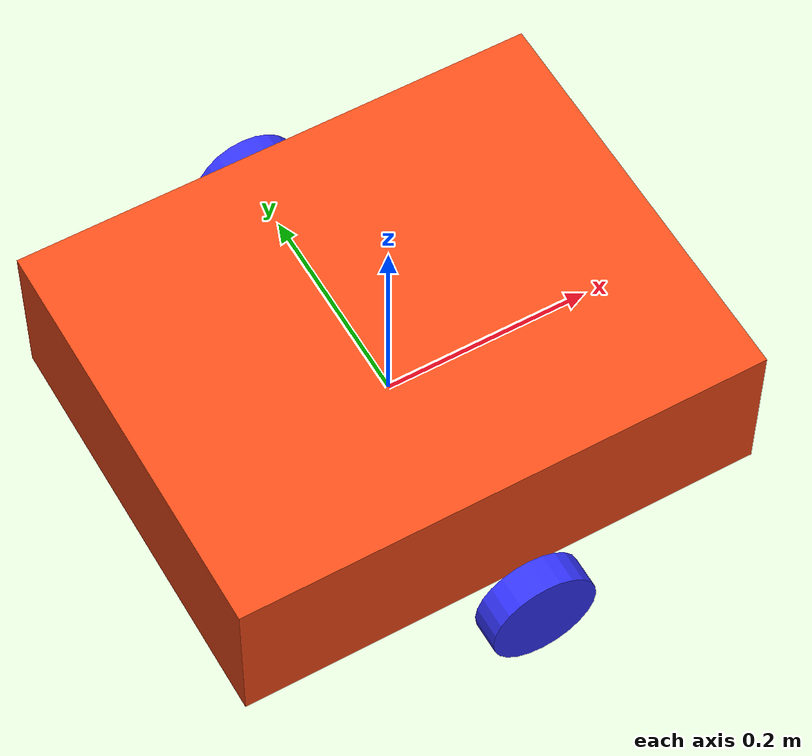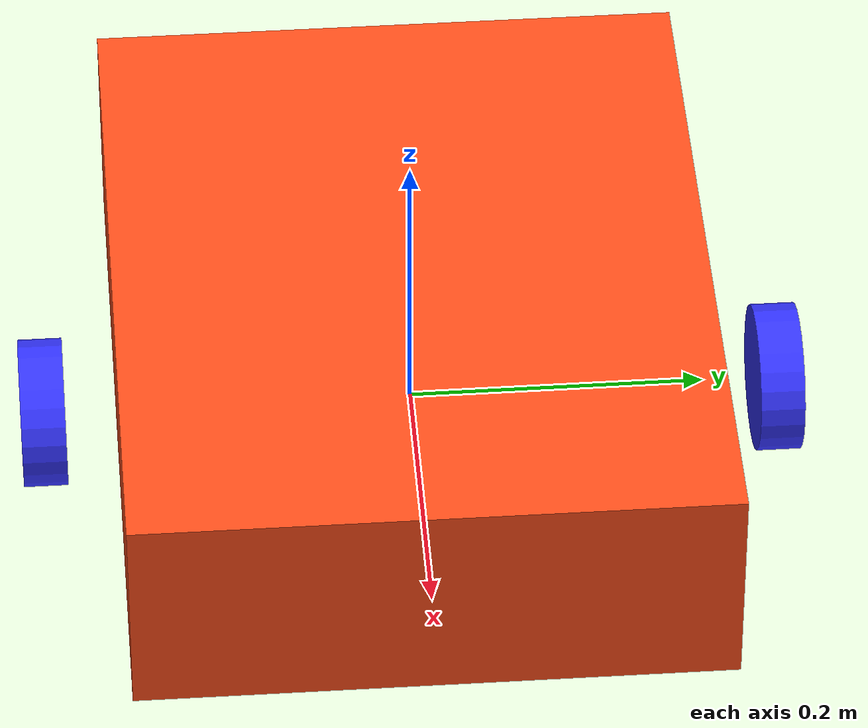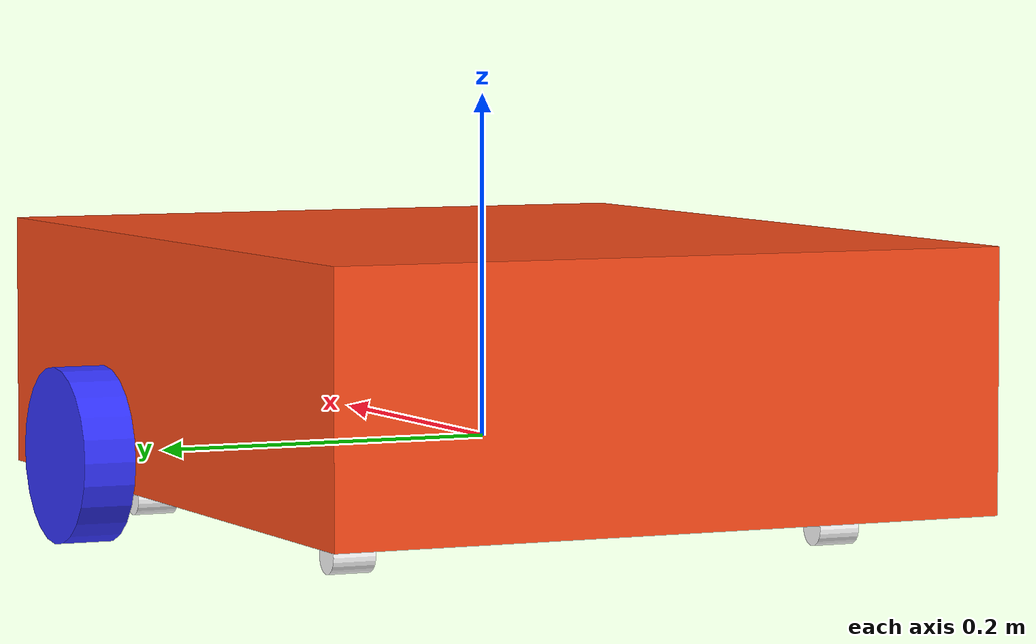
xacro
<?xml version="1.0"?>
<robot xmlns:xacro="http://www.ros.org/wiki/xacro">

    <xacro:include filename="inertial_macros.xacro"/>

    <!-- ROBOT PARAMETERS                                          -->

    <xacro:property name="chassis_length" value="0.50"/>
    <xacro:property name="chassis_width" value="0.40"/>
    <xacro:property name="chassis_height" value="0.15"/>

    <xacro:property name="chassis_mass" value="4.50"/>

    <!-- DRIVE WHEEL PARAMETERS                                    -->

    <xacro:property name="wheel_radius" value="0.05"/>
    <xacro:property name="wheel_thickness" value="0.03"/>
    <xacro:property name="wheel_mass" value="0.18"/>

    <xacro:property name="wheel_separation" value="0.35"/>

    <xacro:property name="chassis_offset_x"
                    value="${chassis_length / 2.0}"/>

    <xacro:property name="wheel_offset_y"
                    value="${(wheel_separation + 0.15) / 2.0}"/>

    <xacro:property name="wheel_offset_z"
                    value="${wheel_radius}"/>

    <!-- CHASSIS PARAMETERS                                        -->

    <xacro:property name="ground_clearance"
                    value="0.02"/>

    <xacro:property name="chassis_offset_z"
                    value="${ground_clearance - wheel_offset_z}"/>

    <!-- CASTER PARAMETERS                                         -->

    <xacro:property name="caster_wheel_radius"
                    value="0.010"/>

    <xacro:property name="caster_wheel_thickness"
                    value="0.025"/>

    <xacro:property name="caster_wheel_mass"
                    value="0.05"/>

    <xacro:property name="caster_offset_x"
                    value="0.10"/>

    <xacro:property name="caster_offset_y"
                    value="0.15"/>

    <xacro:property name="caster_offset_z"
                    value="-0.015"/>

    <!-- MATERIALS                                                 -->

    <material name="white">
        <color rgba="1 1 1 1"/>
    </material>

    <material name="orange">
        <color rgba="1 0.3 0.1 1"/>
    </material>

    <material name="blue">
        <color rgba="0.2 0.2 1 1"/>
    </material>

    <material name="black">
        <color rgba="0 0 0 1"/>
    </material>

    <material name="red">
        <color rgba="1 0 0 1"/>
    </material>

    <!-- BASE LINK                                                  -->

    <link name="base_link">
    </link>

    <!-- BASE FOOTPRINT                                             -->

    <joint name="base_footprint_joint" type="fixed">

        <parent link="base_link"/>
        <child link="base_footprint"/>

        <origin
            xyz="0 0 ${-wheel_offset_z}"
            rpy="0 0 0"/>

    </joint>

    <link name="base_footprint">
    </link>

    <!-- CHASSIS                                                    -->

    <joint name="chassis_joint" type="fixed">

        <parent link="base_link"/>
        <child link="chassis"/>

        <origin
            xyz="${-chassis_offset_x}
                 0
                 ${chassis_offset_z}"
            rpy="0 0 0"/>

    </joint>

    <link name="chassis">

        <visual>

            <origin
                xyz="${chassis_length / 2.0}
                     0
                     ${chassis_height / 2.0}"
                rpy="0 0 0"/>

            <geometry>

                <box
                    size="${chassis_length}
                          ${chassis_width}
                          ${chassis_height}"/>

            </geometry>

            <material name="orange"/>

        </visual>

        <collision>

            <origin
                xyz="${chassis_length / 2.0}
                     0
                     ${chassis_height / 2.0}"
                rpy="0 0 0"/>

            <geometry>

                <box
                    size="${chassis_length}
                          ${chassis_width }
                          ${chassis_height}"/>

            </geometry>

        </collision>

        <xacro:inertial_box
            mass="${chassis_mass}"
            x="${chassis_length}"
            y="${chassis_width}"
            z="${chassis_height}">

            <origin
                xyz="${chassis_length / 2.0}
                     0
                     ${chassis_height / 2.0}"
                rpy="0 0 0"/>

        </xacro:inertial_box>

    </link>

    <gazebo reference="chassis">

        <material>Gazebo/Orange</material>

    </gazebo>

    <!-- LEFT DRIVE WHEEL                                          -->

    <joint name="left_wheel_joint" type="continuous">

        <parent link="base_link"/>
        <child link="left_wheel"/>

        <origin
            xyz="0 ${wheel_offset_y} 0"
            rpy="-${pi / 2.0} 0 0"/>

        <axis xyz="0 0 1"/>

    </joint>

    <link name="left_wheel">

        <visual>

            <geometry>

                <cylinder
                    radius="${wheel_radius}"
                    length="${wheel_thickness}"/>

            </geometry>

            <material name="blue"/>

        </visual>

        <collision>

            <geometry>

                <sphere
                    radius="${wheel_radius}"/>

            </geometry>

        </collision>

        <xacro:inertial_cylinder
            mass="${wheel_mass}"
            length="${wheel_thickness}"
            radius="${wheel_radius}">

            <origin
                xyz="0 0 0"
                rpy="0 0 0"/>

        </xacro:inertial_cylinder>

    </link>

    <gazebo reference="left_wheel">

        <material>Gazebo/Blue</material>

        <mu1 value="0.7"/>
        <mu2 value="0.7"/>

    </gazebo>

    <!-- RIGHT DRIVE WHEEL                                         -->

    <joint name="right_wheel_joint" type="continuous">

        <parent link="base_link"/>
        <child link="right_wheel"/>

        <origin
            xyz="0 ${-wheel_offset_y} 0"
            rpy="${pi / 2.0} 0 0"/>

        <axis xyz="0 0 -1"/>

    </joint>

    <link name="right_wheel">

        <visual>

            <geometry>

                <cylinder
                    radius="${wheel_radius}"
                    length="${wheel_thickness}"/>

            </geometry>

            <material name="blue"/>

        </visual>

        <collision>

            <geometry>

                <sphere
                    radius="${wheel_radius}"/>

            </geometry>

        </collision>

        <xacro:inertial_cylinder
            mass="${wheel_mass}"
            length="${wheel_thickness}"
            radius="${wheel_radius}">

            <origin
                xyz="0 0 0"
                rpy="0 0 0"/>

        </xacro:inertial_cylinder>

    </link>

    <gazebo reference="right_wheel">

        <material>Gazebo/Blue</material>

        <mu1 value="1.0"/>
        <mu2 value="1.0"/>

    </gazebo>

    <!-- CASTER WHEEL MACRO                                        -->

    <xacro:macro name="caster_wheel" params="name x y">

        <joint name="${name}_joint" type="fixed">

            <parent link="chassis"/>
            <child link="${name}"/>

            <origin
                xyz="${x}
                     ${y}
                     ${caster_offset_z}"
                rpy="0 0 0"/>

        </joint>

        <link name="${name}">

            <visual>

                <origin
                    xyz="0 0 0"
                    rpy="${pi / 2.0} 0 0"/>

                <geometry>

                    <cylinder
                        radius="${caster_wheel_radius}"
                        length="${caster_wheel_thickness}"/>

                </geometry>

                <material name="white"/>

            </visual>

            <collision>

                <geometry>

                    <sphere
                        radius="${caster_wheel_radius}"/>

                </geometry>

            </collision>

            <xacro:inertial_sphere
                mass="${caster_wheel_mass}"
                radius="${caster_wheel_radius}">

                <origin
                    xyz="0 0 0"
                    rpy="0 0 0"/>

            </xacro:inertial_sphere>

        </link>

        <gazebo reference="${name}">

            <material>Gazebo/White</material>

            <mu1 value="0.001"/>
            <mu2 value="0.001"/>

        </gazebo>

    </xacro:macro>

    <!-- FOUR CASTER WHEELS                                        -->

    <xacro:caster_wheel
        name="rear_left_caster"
        x="${caster_offset_x}"
        y="${caster_offset_y}"/>

    <xacro:caster_wheel
        name="rear_right_caster"
        x="${caster_offset_x}"
        y="${-caster_offset_y}"/>

    <xacro:caster_wheel
        name="front_left_caster"
        x="${chassis_length - caster_offset_x}"
        y="${caster_offset_y}"/>

    <xacro:caster_wheel
        name="front_right_caster"
        x="${chassis_length - caster_offset_x}"
        y="${-caster_offset_y}"/>

</robot>
